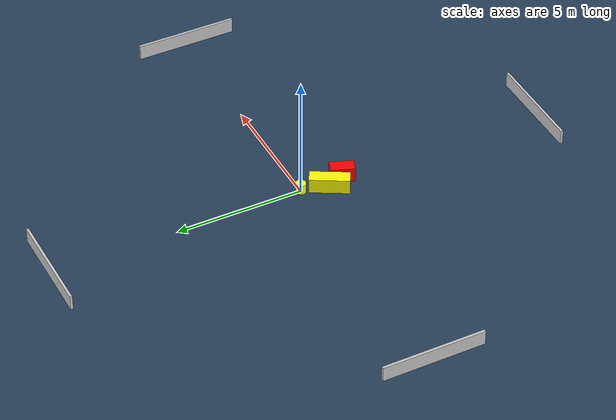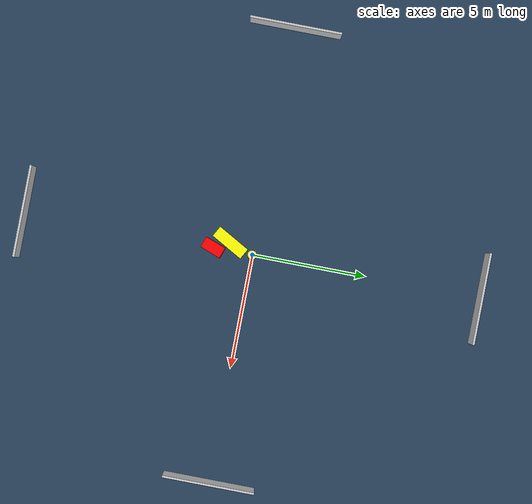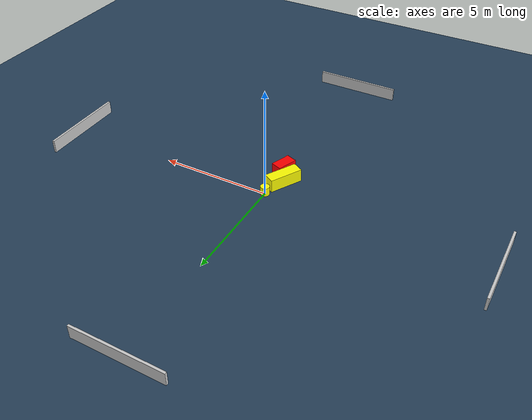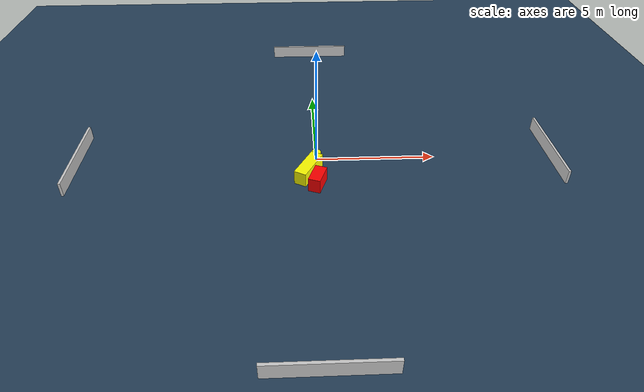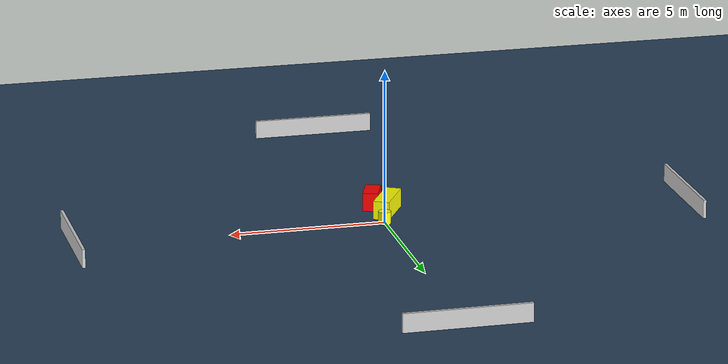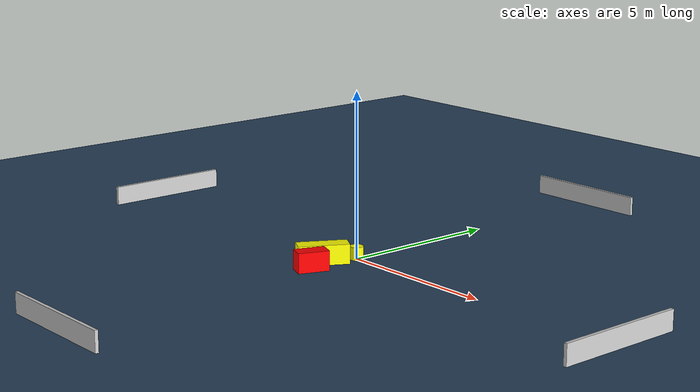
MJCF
<?xml version="1.0" ?>
<mujoco model="generated_environment">
  <option timestep="0.01" integrator="RK4" cone="elliptic"/>
  <default>
    <geom density="1"/>
  </default>
  <asset>
    <texture builtin="gradient" height="3072" name="skybox" rgb1="0.3 0.5 0.7" rgb2="0 0 0" type="skybox" width="512"/>
    <texture builtin="checker" height="300" name="groundplane" rgb1="0.2 0.3 0.4" rgb2="0.1 0.2 0.3" type="2d" width="300"/>
    <material name="groundplane" reflectance="0.2" texrepeat="5 5" texture="groundplane"/>
  </asset>
  <worldbody>
    <light dir="0 0 -1" directional="true" pos="0 0 1.5"/>
    <geom condim="3" friction="0.5 0.005 0.001" material="groundplane" name="floor" pos="0 0 0" size="0 0 0.05" type="plane"/>
    <body name="walls">
      <geom name="wall_1" condim="4" pos="-10.0 0.0 0.3" rgba="0.800000011920929 0.800000011920929 0.800000011920929 1.0" size="0.05 2.0 0.3" type="box"/>
      <geom name="wall_2" condim="4" pos="10.0 0.0 0.3" rgba="0.800000011920929 0.800000011920929 0.800000011920929 1.0" size="0.05 2.0 0.3" type="box"/>
      <geom name="wall_3" condim="4" pos="0.0 -10.0 0.3" rgba="0.800000011920929 0.800000011920929 0.800000011920929 1.0" size="2.0 0.05 0.3" type="box"/>
      <geom name="wall_4" condim="4" pos="0.0 10.0 0.3" rgba="0.800000011920929 0.800000011920929 0.800000011920929 1.0" size="2.0 0.05 0.3" type="box"/>
    </body>
    <body name="robot">
      <joint name="joint_x" type="slide" pos="0 0 0" axis="1 0 0"/>
      <joint name="joint_y" type="slide" pos="0 0 0" axis="0 1 0"/>
      <geom name="robot" type="cylinder" pos="0.0 0.0 0.2" size="0.2 0.2 0.0" mass="5.0" friction="1.0 0.005 0.0001" condim="4" rgba="1.0 1.0 0.0 1.0"/>
    </body>
    <body name="obstacle_1_movable">
      <geom name="obstacle_1_movable" condim="4" pos="-0.3425828746756013 -1.0136770265541981 0.3" euler="0 0 60.95218956303138" friction="0.0 0.005 0.001" rgba="1.0 1.0 0.0 1.0" size="0.7649004505492734 0.25840555787625646 0.3" type="box" mass="0.1"/>
      <joint type="free"/>
    </body>
    <body name="obstacle_2_static">
      <geom name="obstacle_2_static" condim="4" pos="-0.004822004739310584 -1.7078081527550224 0.3" euler="0 0 159.93422565248798" friction="0.0 0.005 0.001" rgba="1.0 0.0 0.0 1.0" size="0.24863135428939356 0.46754999319346624 0.3" type="box"/>
    </body>
  </worldbody>
  <actuator>
    <motor name="actuator_x" joint="joint_x" gear="1" ctrlrange="-1 1"/>
    <motor name="actuator_y" joint="joint_y" gear="1" ctrlrange="-1 1"/>
  </actuator>
</mujoco>
